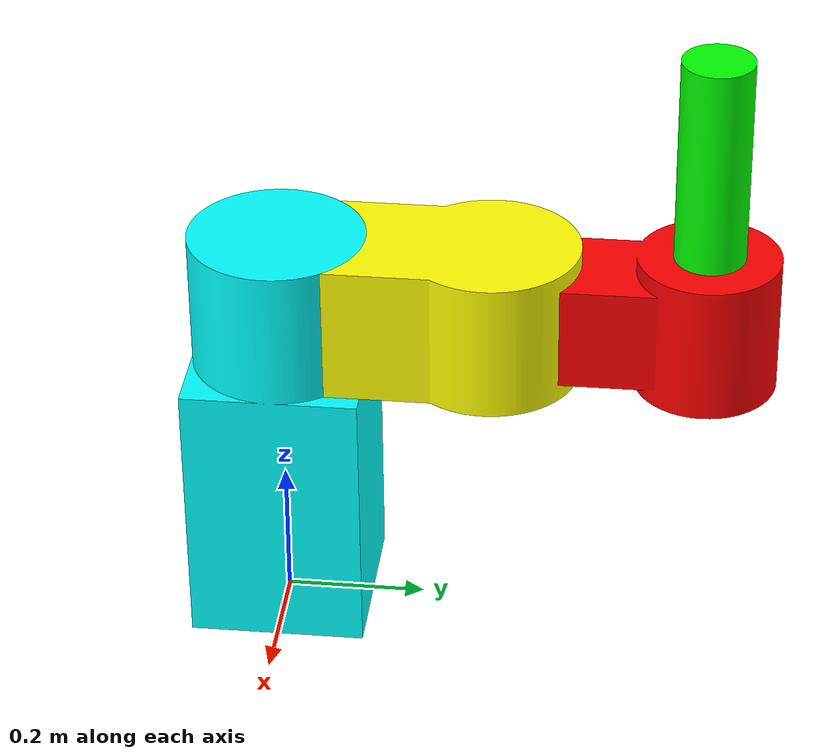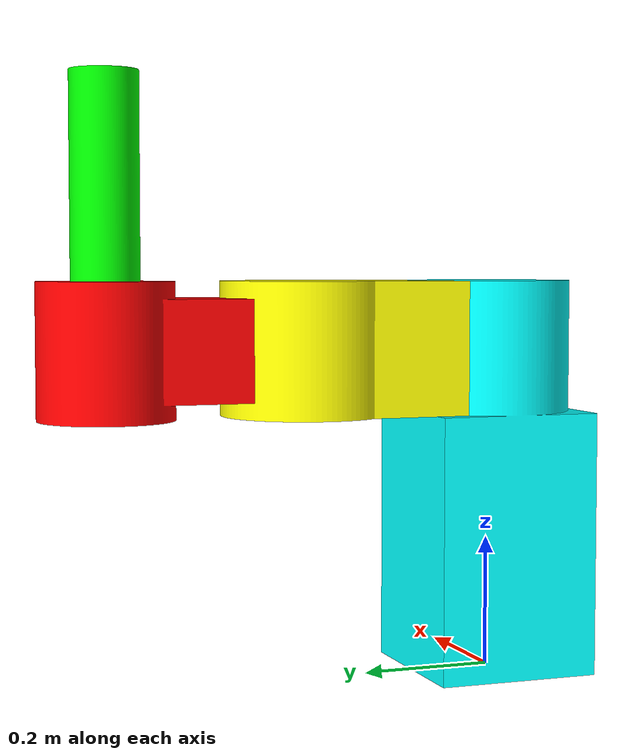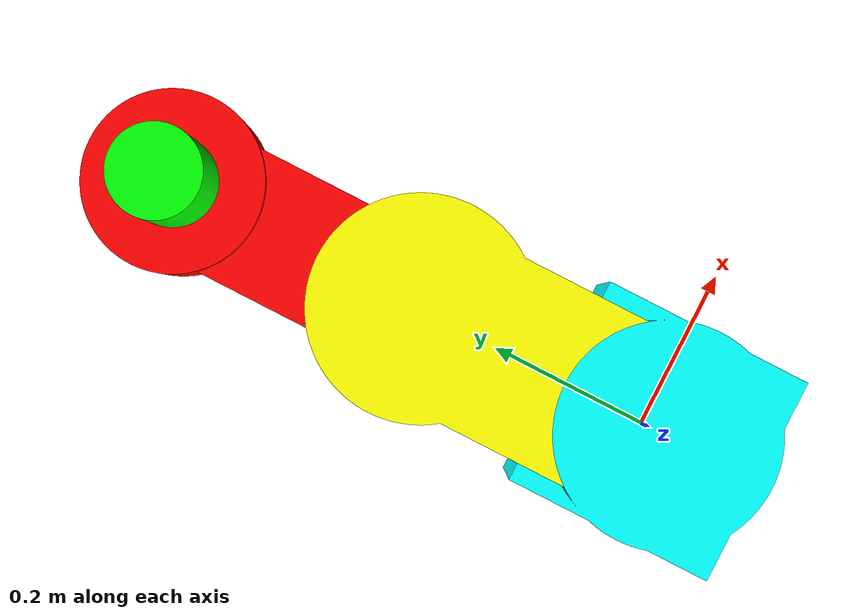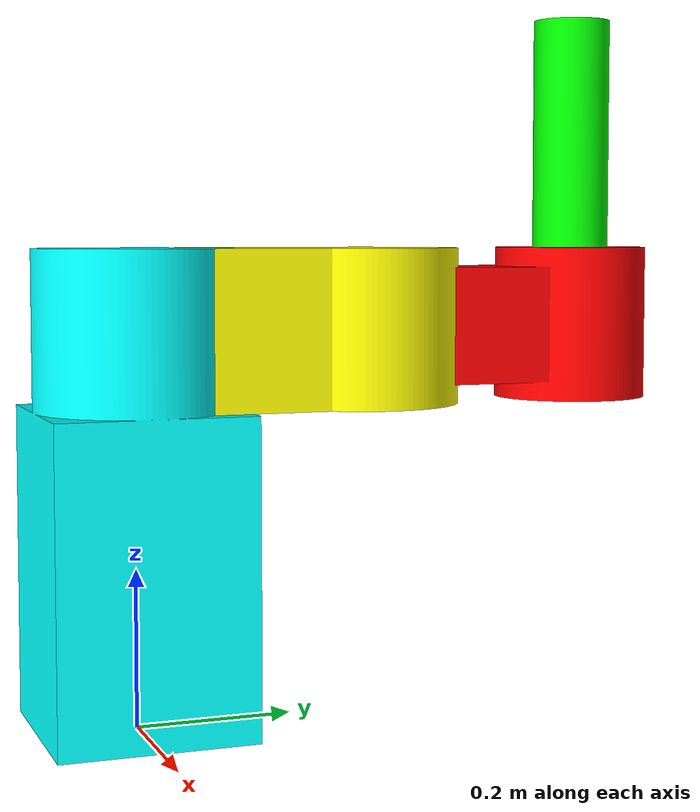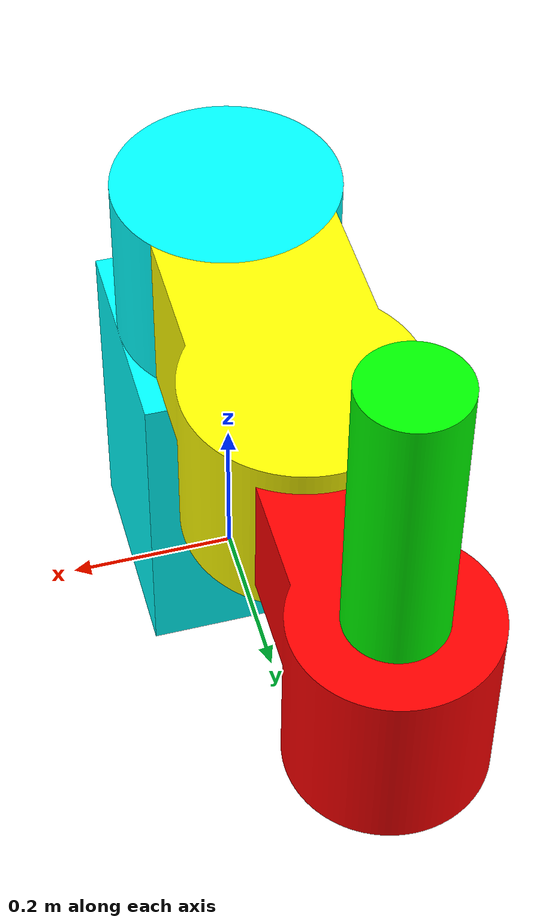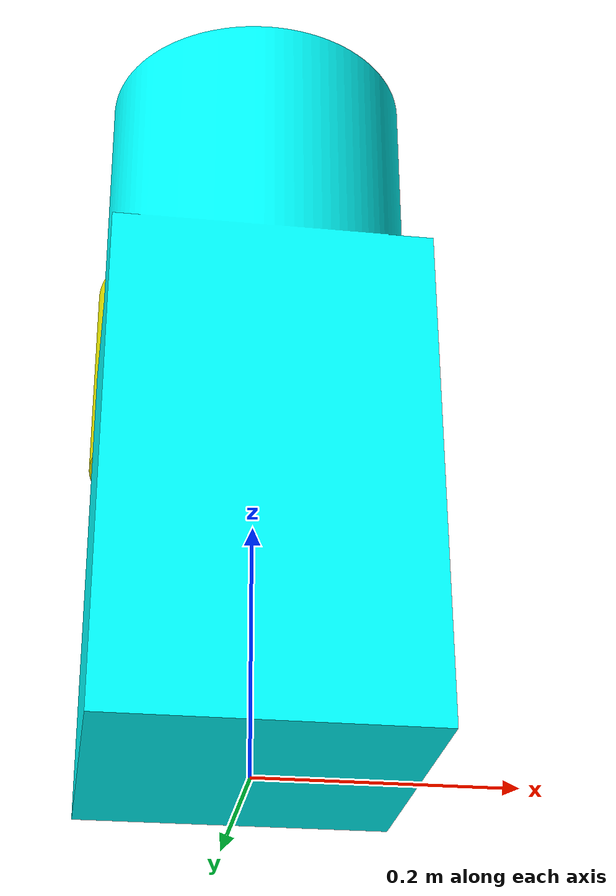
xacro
<?xml version="1.0"?>
<robot xmlns:xacro="http://wiki.ros.org/xacro" name="scara">
    <link name="base_link">
        <visual>
            <geometry>
                <mesh filename="package://elaborato_R2/meshes/base_link.stl" />
            </geometry>
            <material name="Cyan">
                <color rgba="0 1.0 1.0 1.0"/>
            </material>
        </visual>
        <collision>
            <geometry>
                <mesh filename="package://elaborato_R2/meshes/base_link.stl" />
            </geometry>
        </collision>
    </link>
    <link name="inner_arm">
        <visual>
            <origin xyz="0 0 0" rpy="0 0 -1.5704" />
            <geometry>
                <mesh filename="package://elaborato_R2/meshes/inner_arm.stl" />
            </geometry>
            <material name="Yellow">
                <color rgba="1.0 1.0 0 1.0"/>
            </material>
        </visual>
        <collision>
            <geometry>
                <mesh filename="package://elaborato_R2/meshes/inner_arm.stl" />
            </geometry>
        </collision>
    </link>
    <link name="outer_arm">
        <visual>
            <origin xyz="0 0 0" rpy="0 0 -1.5704" />
            <geometry>
                <mesh filename="package://elaborato_R2/meshes/outer_arm.stl" />
            </geometry>
            <material name="Red">
                <color rgba="1.0 0 0 1.0"/>
            </material>
        </visual>
        <collision>
            <geometry>
                <mesh filename="package://elaborato_R2/meshes/outer_arm.stl" />
            </geometry>
        </collision>
    </link>
    <link name="end_arm">
        <visual>
            <origin xyz="0 0 0" rpy="0 0 -1.5704" />
            <geometry>
                <mesh filename="package://elaborato_R2/meshes/end_arm.stl" />
            </geometry>
            <material name="Green">
                <color rgba="0 1.0 0 1.0"/>
            </material>
        </visual>
        <collision>
            <geometry>
                <mesh filename="package://elaborato_R2/meshes/end_arm.stl" />
            </geometry>
        </collision>
    </link>

    <link name="end_arm_mimic" />

    <link name="end_effector" />

    <joint name="joint1" type="revolute">
        <parent link="base_link"/>
        <child link="inner_arm"/>
        <limit effort="1000.0" lower="-2.5" upper="2.5" velocity="0.1"/>
        <origin xyz="0.0 0.0 0.5" rpy="0.0 0.0 1.57" />
        <axis xyz="0 0 1" />
    </joint>
    <joint name="joint2" type="revolute">
        <parent link="inner_arm"/>
        <child link="outer_arm"/>
        <limit effort="1000.0" lower="-2" upper="2" velocity="0.1"/>
        <origin xyz="0.3 0.0 0.0" rpy="0.0 0.0 0.0" />
        <axis xyz="0 0 1" />
    </joint>
    <joint name="joint3" type="prismatic">
        <parent link="outer_arm"/>
        <child link="end_arm_mimic"/>
        <limit effort="1000.0" lower="-0.45" upper="0" velocity="0.1"/>
        <origin xyz="0.3 0.0 0.15" rpy="0.0 0.0 0.0" />
        <axis xyz="0 0 1" />
    </joint>
    <joint name="joint4" type="revolute">
        <parent link="end_arm_mimic"/>
        <child link="end_arm"/>
        <limit effort="1000.0" lower="-3" upper="3" velocity="0.1"/>
        <origin xyz="0 0.0 0.0" rpy="0.0 0.0 0.0" />
        <axis xyz="0 0 1" />
    </joint>
    <joint name="joint5" type="fixed">
        <parent link="end_arm"/>
        <child link="end_effector"/>
        <origin xyz="0 0.0 -0.25" rpy="3.1415 0.0 0.0" />
    </joint>
</robot>
